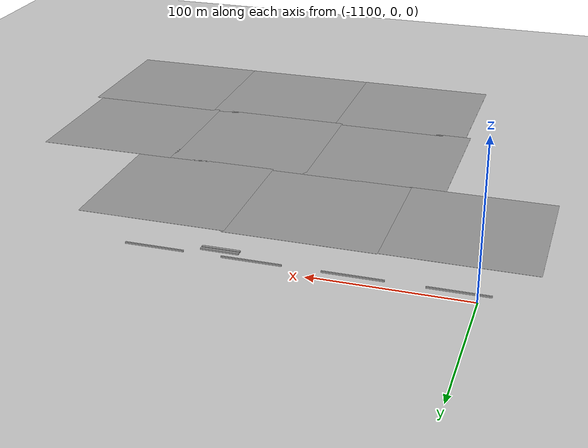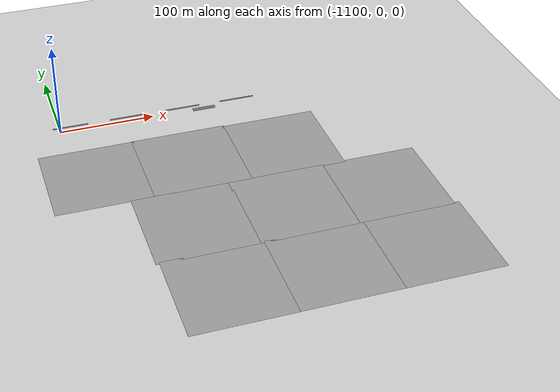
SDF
<sdf version="1.7">
 <world name="default">
  <model name="ground_plane">
   <static>1</static>
   <link name="link">
    <collision name="collision">
     <geometry><plane><normal>0 0 1</normal><size>100 100</size></plane></geometry>
     <surface><friction><ode><mu>100</mu><mu2>50</mu2></ode></friction></surface>
    </collision>
    <visual name="visual">
     <cast_shadows>0</cast_shadows>
     <geometry><plane><normal>0 0 1</normal><size>100 100</size></plane></geometry>
     <material>
      <script><uri>file://media/materials/scripts/gazebo.material</uri><name>Gazebo/Grey</name></script>
     </material>
    </visual>
   </link>
  </model>
  <model name="ground_plane_81">
   <static>1</static>
   <link name="link">
    <collision name="collision">
     <geometry><plane><normal>0 0 1</normal><size>100 100</size></plane></geometry>
     <surface>
      <contact><collide_bitmask>65535</collide_bitmask></contact>
      <friction><ode><mu>100</mu><mu2>50</mu2></ode></friction>
     </surface>
    </collision>
    <visual name="visual">
     <cast_shadows>0</cast_shadows>
     <geometry><plane><normal>0 0 1</normal><size>100 100</size></plane></geometry>
     <material>
      <script><uri>file://media/materials/scripts/gazebo.material</uri><name>Gazebo/Grey</name></script>
     </material>
    </visual>
   </link>
   <pose>-809.897 -189.386 0 0 -0 0</pose>
  </model>
  <model name="ground_plane_84">
   <static>1</static>
   <link name="link">
    <collision name="collision">
     <geometry><plane><normal>0 0 1</normal><size>100 100</size></plane></geometry>
     <surface>
      <contact><collide_bitmask>65535</collide_bitmask></contact>
      <friction><ode><mu>100</mu><mu2>50</mu2></ode></friction>
     </surface>
    </collision>
    <visual name="visual">
     <cast_shadows>0</cast_shadows>
     <geometry><plane><normal>0 0 1</normal><size>100 100</size></plane></geometry>
     <material>
      <script><uri>file://media/materials/scripts/gazebo.material</uri><name>Gazebo/Grey</name></script>
     </material>
    </visual>
   </link>
   <pose>-885.158 -91.8052 0 0 -0 0</pose>
  </model>
  <model name="ground_plane_86">
   <static>1</static>
   <link name="link">
    <collision name="collision">
     <geometry><plane><normal>0 0 1</normal><size>100 100</size></plane></geometry>
     <surface>
      <contact><collide_bitmask>65535</collide_bitmask></contact>
      <friction><ode><mu>100</mu><mu2>50</mu2></ode></friction>
     </surface>
    </collision>
    <visual name="visual">
     <cast_shadows>0</cast_shadows>
     <geometry><plane><normal>0 0 1</normal><size>100 100</size></plane></geometry>
     <material>
      <script><uri>file://media/materials/scripts/gazebo.material</uri><name>Gazebo/Grey</name></script>
     </material>
    </visual>
   </link>
   <pose>-908.681 -189.853 0 0 -0 0</pose>
  </model>
  <model name="ground_plane_89">
   <static>1</static>
   <link name="link">
    <collision name="collision">
     <geometry><plane><normal>0 0 1</normal><size>100 100</size></plane></geometry>
     <surface>
      <contact><collide_bitmask>65535</collide_bitmask></contact>
      <friction><ode><mu>100</mu><mu2>50</mu2></ode></friction>
     </surface>
    </collision>
    <visual name="visual">
     <cast_shadows>0</cast_shadows>
     <geometry><plane><normal>0 0 1</normal><size>100 100</size></plane></geometry>
     <material>
      <script><uri>file://media/materials/scripts/gazebo.material</uri><name>Gazebo/Grey</name></script>
     </material>
    </visual>
   </link>
   <pose>-983.428 -90.3022 0 0 -0 0</pose>
  </model>
  <model name="ground_plane_93">
   <static>1</static>
   <link name="link">
    <collision name="collision">
     <geometry><plane><normal>0 0 1</normal><size>100 100</size></plane></geometry>
     <surface>
      <contact><collide_bitmask>65535</collide_bitmask></contact>
      <friction><ode><mu>100</mu><mu2>50</mu2></ode></friction>
     </surface>
    </collision>
    <visual name="visual">
     <cast_shadows>0</cast_shadows>
     <geometry><plane><normal>0 0 1</normal><size>100 100</size></plane></geometry>
     <material>
      <script><uri>file://media/materials/scripts/gazebo.material</uri><name>Gazebo/Grey</name></script>
     </material>
    </visual>
   </link>
   <pose>-1006.95 -189.733 0 0 -0 0</pose>
  </model>
  <model name="ground_plane_94">
   <static>1</static>
   <link name="link">
    <collision name="collision">
     <geometry><plane><normal>0 0 1</normal><size>100 100</size></plane></geometry>
     <surface>
      <contact><collide_bitmask>65535</collide_bitmask></contact>
      <friction><ode><mu>100</mu><mu2>50</mu2></ode></friction>
     </surface>
    </collision>
    <visual name="visual">
     <cast_shadows>0</cast_shadows>
     <geometry><plane><normal>0 0 1</normal><size>100 100</size></plane></geometry>
     <material>
      <script><uri>file://media/materials/scripts/gazebo.material</uri><name>Gazebo/Grey</name></script>
     </material>
    </visual>
   </link>
   <pose>-1081.04 -90.9755 0 0 -0 0</pose>
  </model>
  <model name="ground_plane_224">
   <static>1</static>
   <link name="link">
    <collision name="collision">
     <geometry><plane><normal>0 0 1</normal><size>100 100</size></plane></geometry>
     <surface>
      <contact><collide_bitmask>65535</collide_bitmask></contact>
      <friction><ode><mu>100</mu><mu2>50</mu2></ode></friction>
     </surface>
    </collision>
    <visual name="visual">
     <cast_shadows>0</cast_shadows>
     <geometry><plane><normal>0 0 1</normal><size>100 100</size></plane></geometry>
     <material>
      <script><uri>file://media/materials/scripts/gazebo.material</uri><name>Gazebo/Grey</name></script>
     </material>
    </visual>
   </link>
   <pose>-805.149 -287.335 0 0 -0 0</pose>
  </model>
  <model name="ground_plane_225">
   <static>1</static>
   <link name="link">
    <collision name="collision">
     <geometry><plane><normal>0 0 1</normal><size>100 100</size></plane></geometry>
     <surface>
      <contact><collide_bitmask>65535</collide_bitmask></contact>
      <friction><ode><mu>100</mu><mu2>50</mu2></ode></friction>
     </surface>
    </collision>
    <visual name="visual">
     <cast_shadows>0</cast_shadows>
     <geometry><plane><normal>0 0 1</normal><size>100 100</size></plane></geometry>
     <material>
      <script><uri>file://media/materials/scripts/gazebo.material</uri><name>Gazebo/Grey</name></script>
     </material>
    </visual>
   </link>
   <pose>-903.86 -287.287 0 0 -0 0</pose>
  </model>
  <model name="ground_plane_226">
   <static>1</static>
   <link name="link">
    <collision name="collision">
     <geometry><plane><normal>0 0 1</normal><size>100 100</size></plane></geometry>
     <surface>
      <contact><collide_bitmask>65535</collide_bitmask></contact>
      <friction><ode><mu>100</mu><mu2>50</mu2></ode></friction>
     </surface>
    </collision>
    <visual name="visual">
     <cast_shadows>0</cast_shadows>
     <geometry><plane><normal>0 0 1</normal><size>100 100</size></plane></geometry>
     <material>
      <script><uri>file://media/materials/scripts/gazebo.material</uri><name>Gazebo/Grey</name></script>
     </material>
    </visual>
   </link>
   <pose>-1003.57 -287.397 0 0 -0 0</pose>
  </model>
  <model name="runway_middle_strip_120ft_clone_4">
   <pose>-1089.24 2 5 0 -0 0</pose>
   <link name="Wall_4">
    <collision name="Wall_4_Collision">
     <geometry><box><size>37.426 1 1</size></box></geometry>
     <pose>0 0 0.05 0 -0 0</pose>
    </collision>
    <visual name="Wall_4_Visual">
     <pose>0 0 0.05 0 -0 0</pose>
     <geometry><box><size>37.426 1 1</size></box></geometry>
     <material>
      <script><uri>file://media/materials/scripts/gazebo.material</uri><name>Gazebo/Grey</name></script>
      <ambient>1 1 1 1</ambient>
     </material>
     <meta><layer>0</layer></meta>
    </visual>
    <pose>0 -2.48 0 0 -0 0</pose>
   </link>
   <static>1</static>
  </model>
  <model name="runway_middle_strip_120ft_clone_5">
   <pose>-1028.28 2 5 0 -0 0</pose>
   <link name="Wall_4">
    <collision name="Wall_4_Collision">
     <geometry><box><size>37.426 1 1</size></box></geometry>
     <pose>0 0 0.05 0 -0 0</pose>
    </collision>
    <visual name="Wall_4_Visual">
     <pose>0 0 0.05 0 -0 0</pose>
     <geometry><box><size>37.426 1 1</size></box></geometry>
     <material>
      <script><uri>file://media/materials/scripts/gazebo.material</uri><name>Gazebo/Grey</name></script>
      <ambient>1 1 1 1</ambient>
     </material>
     <meta><layer>0</layer></meta>
    </visual>
    <pose>0 -2.48 0 0 -0 0</pose>
   </link>
   <static>1</static>
  </model>
  <model name="runway_middle_strip_120ft_clone_6">
   <pose>-967.32 2 5 0 -0 0</pose>
   <link name="Wall_4">
    <collision name="Wall_4_Collision">
     <geometry><box><size>37.426 1 1</size></box></geometry>
     <pose>0 0 0.05 0 -0 0</pose>
    </collision>
    <visual name="Wall_4_Visual">
     <pose>0 0 0.05 0 -0 0</pose>
     <geometry><box><size>37.426 1 1</size></box></geometry>
     <material>
      <script><uri>file://media/materials/scripts/gazebo.material</uri><name>Gazebo/Grey</name></script>
      <ambient>1 1 1 1</ambient>
     </material>
     <meta><layer>0</layer></meta>
    </visual>
    <pose>0 -2.48 0 0 -0 0</pose>
   </link>
   <static>1</static>
  </model>
  <model name="runway_middle_strip_120ft_clone_7">
   <pose>-906.36 2 5 0 -0 0</pose>
   <link name="Wall_4">
    <collision name="Wall_4_Collision">
     <geometry><box><size>37.426 1 1</size></box></geometry>
     <pose>0 0 0.05 0 -0 0</pose>
    </collision>
    <visual name="Wall_4_Visual">
     <pose>0 0 0.05 0 -0 0</pose>
     <geometry><box><size>37.426 1 1</size></box></geometry>
     <material>
      <script><uri>file://media/materials/scripts/gazebo.material</uri><name>Gazebo/Grey</name></script>
      <ambient>1 1 1 1</ambient>
     </material>
     <meta><layer>0</layer></meta>
    </visual>
    <pose>0 -2.48 0 0 -0 0</pose>
   </link>
   <static>1</static>
  </model>
  <model name="runway_touchdown_strip_22d5m_clone_2_clone_3">
   <pose>-947.6 -8 5 0 -0 1.5708</pose>
   <link name="Wall_6">
    <collision name="Wall_6_Collision">
     <geometry><box><size>24.15 1.8 1</size></box></geometry>
     <pose>0 0 0.05 0 -0 0</pose>
    </collision>
    <visual name="Wall_6_Visual">
     <pose>0 0 0.05 0 -0 0</pose>
     <geometry><box><size>24.15 1.8 1</size></box></geometry>
     <material>
      <script><uri>file://media/materials/scripts/gazebo.material</uri><name>Gazebo/Grey</name></script>
      <ambient>1 1 1 1</ambient>
     </material>
     <meta><layer>0</layer></meta>
    </visual>
    <pose>1.16 -2.16 0 0 -0 -1.5708</pose>
   </link>
   <static>1</static>
  </model>
  <model name="runway_touchdown_strip_22d5m_clone_2_clone_2_clone_4">
   <pose>-947.6 -10.5 5 0 -0 1.5708</pose>
   <link name="Wall_6">
    <collision name="Wall_6_Collision">
     <geometry><box><size>24.15 1.8 1</size></box></geometry>
     <pose>0 0 0.05 0 -0 0</pose>
    </collision>
    <visual name="Wall_6_Visual">
     <pose>0 0 0.05 0 -0 0</pose>
     <geometry><box><size>24.15 1.8 1</size></box></geometry>
     <material>
      <script><uri>file://media/materials/scripts/gazebo.material</uri><name>Gazebo/Grey</name></script>
      <ambient>1 1 1 1</ambient>
     </material>
     <meta><layer>0</layer></meta>
    </visual>
    <pose>1.16 -2.16 0 0 -0 -1.5708</pose>
   </link>
   <static>1</static>
  </model>
 </world>
</sdf>
